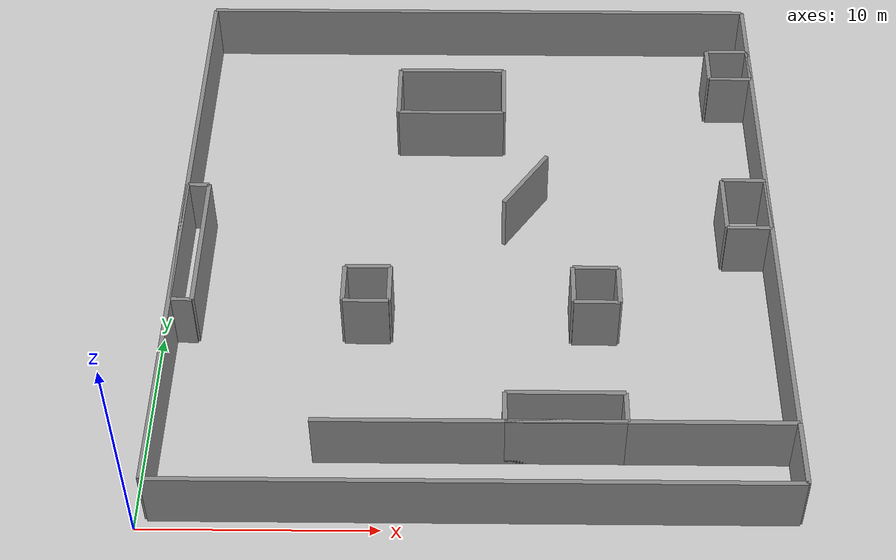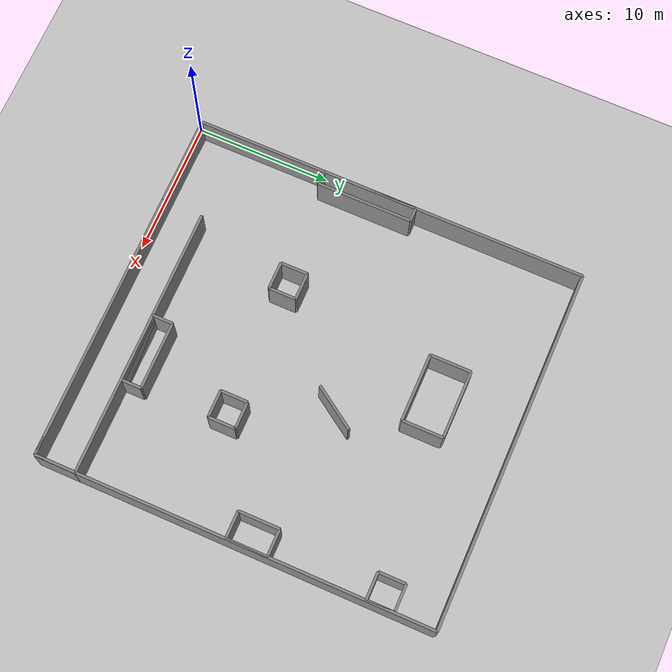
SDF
<?xml version="1.0" ?>

    <!-- this file is auto generated using pedsim_gazebo_plugin pkg -->
    <sdf version="1.5">
      <world name="default">

      <!-- Ground Plane -->

      <model name="ground_plane">
        <static>true</static>
        <link name="link">
          <collision name="collision">
            <geometry>
              <plane>
                <normal>0 0 1</normal>
                <size>100 100</size>
              </plane>
            </geometry>
          </collision>
          <visual name="visual">
            <geometry>
              <plane>
                <normal>0 0 1</normal>
                <size>100 100</size>
              </plane>
            </geometry>
            <material>
              <ambient>0.8 0.8 0.8 1</ambient>
              <diffuse>0.8 0.8 0.8 1</diffuse>
            </material>
          </visual>
        </link>
      </model>

      <light name="sun" type="directional">
        <cast_shadows>true</cast_shadows>
        <pose>0 0 10 0 0 0</pose>
        <diffuse>0.8 0.8 0.8 1</diffuse>
        <specular>0.2 0.2 0.2 1</specular>
        <attenuation>
          <range>1000</range>
          <constant>0.9</constant>
          <linear>0.01</linear>
          <quadratic>0.001</quadratic>
        </attenuation>
        <direction>-0.5 0.1 -0.9</direction>
      </light>

     <model name='grey_wall_1'>
      <static>1</static>
      <link name='link'>

	  <pose frame=''>13.75 0.5  1.4 0 0 0.0</pose>

        <collision name='collision'>
          <geometry>
            <box>

	     <size> 26.5 .2  2.8 </size>

      	   </box>
          </geometry>
          <max_contacts>10</max_contacts>
          <surface>
            <contact>
              <ode/>
            </contact>
            <bounce/>
            <friction>
              <torsional>
                <ode/>
              </torsional>
              <ode/>
            </friction>
          </surface>
        </collision>
        <visual name='visual'>
          <cast_shadows>0</cast_shadows>
          <geometry>
            <box>

	     <size> 26.5 .2  2.8 </size>

      	   </box>
       </geometry>
          <material>
            <ambient>0.55 0.55 0.55 1</ambient>
            <diffuse>0.55 0.55 0.55 1</diffuse>
          </material>
        </visual>
        <self_collide>0</self_collide>
        <enable_wind>0</enable_wind>
        <kinematic>0</kinematic>
      </link>
    </model>

     <model name='grey_wall_2'>
      <static>1</static>
      <link name='link'>

	  <pose frame=''>0.5 15.0  1.4 0 0 1.57</pose>

        <collision name='collision'>
          <geometry>
            <box>

	     <size> 29.0 .2  2.8 </size>

      	   </box>
          </geometry>
          <max_contacts>10</max_contacts>
          <surface>
            <contact>
              <ode/>
            </contact>
            <bounce/>
            <friction>
              <torsional>
                <ode/>
              </torsional>
              <ode/>
            </friction>
          </surface>
        </collision>
        <visual name='visual'>
          <cast_shadows>0</cast_shadows>
          <geometry>
            <box>

	     <size> 29.0 .2  2.8 </size>

      	   </box>
       </geometry>
          <material>
            <ambient>0.55 0.55 0.55 1</ambient>
            <diffuse>0.55 0.55 0.55 1</diffuse>
          </material>
        </visual>
        <self_collide>0</self_collide>
        <enable_wind>0</enable_wind>
        <kinematic>0</kinematic>
      </link>
    </model>

     <model name='grey_wall_3'>
      <static>1</static>
      <link name='link'>

	  <pose frame=''>13.75 29.5  1.4 0 0 0.0</pose>

        <collision name='collision'>
          <geometry>
            <box>

	     <size> 26.5 .2  2.8 </size>

      	   </box>
          </geometry>
          <max_contacts>10</max_contacts>
          <surface>
            <contact>
              <ode/>
            </contact>
            <bounce/>
            <friction>
              <torsional>
                <ode/>
              </torsional>
              <ode/>
            </friction>
          </surface>
        </collision>
        <visual name='visual'>
          <cast_shadows>0</cast_shadows>
          <geometry>
            <box>

	     <size> 26.5 .2  2.8 </size>

      	   </box>
       </geometry>
          <material>
            <ambient>0.55 0.55 0.55 1</ambient>
            <diffuse>0.55 0.55 0.55 1</diffuse>
          </material>
        </visual>
        <self_collide>0</self_collide>
        <enable_wind>0</enable_wind>
        <kinematic>0</kinematic>
      </link>
    </model>

     <model name='grey_wall_4'>
      <static>1</static>
      <link name='link'>

	  <pose frame=''>27.0 15.0  1.4 0 0 1.57</pose>

        <collision name='collision'>
          <geometry>
            <box>

	     <size> 29.0 .2  2.8 </size>

      	   </box>
          </geometry>
          <max_contacts>10</max_contacts>
          <surface>
            <contact>
              <ode/>
            </contact>
            <bounce/>
            <friction>
              <torsional>
                <ode/>
              </torsional>
              <ode/>
            </friction>
          </surface>
        </collision>
        <visual name='visual'>
          <cast_shadows>0</cast_shadows>
          <geometry>
            <box>

	     <size> 29.0 .2  2.8 </size>

      	   </box>
       </geometry>
          <material>
            <ambient>0.55 0.55 0.55 1</ambient>
            <diffuse>0.55 0.55 0.55 1</diffuse>
          </material>
        </visual>
        <self_collide>0</self_collide>
        <enable_wind>0</enable_wind>
        <kinematic>0</kinematic>
      </link>
    </model>

     <model name='grey_wall_5'>
      <static>1</static>
      <link name='link'>

	  <pose frame=''>12.5 22.0  1.4 0 0 0.0</pose>

        <collision name='collision'>
          <geometry>
            <box>

	     <size> 5.0 .2  2.8 </size>

      	   </box>
          </geometry>
          <max_contacts>10</max_contacts>
          <surface>
            <contact>
              <ode/>
            </contact>
            <bounce/>
            <friction>
              <torsional>
                <ode/>
              </torsional>
              <ode/>
            </friction>
          </surface>
        </collision>
        <visual name='visual'>
          <cast_shadows>0</cast_shadows>
          <geometry>
            <box>

	     <size> 5.0 .2  2.8 </size>

      	   </box>
       </geometry>
          <material>
            <ambient>0.55 0.55 0.55 1</ambient>
            <diffuse>0.55 0.55 0.55 1</diffuse>
          </material>
        </visual>
        <self_collide>0</self_collide>
        <enable_wind>0</enable_wind>
        <kinematic>0</kinematic>
      </link>
    </model>

     <model name='grey_wall_6'>
      <static>1</static>
      <link name='link'>

	  <pose frame=''>10.0 23.5  1.4 0 0 1.57</pose>

        <collision name='collision'>
          <geometry>
            <box>

	     <size> 3.0 .2  2.8 </size>

      	   </box>
          </geometry>
          <max_contacts>10</max_contacts>
          <surface>
            <contact>
              <ode/>
            </contact>
            <bounce/>
            <friction>
              <torsional>
                <ode/>
              </torsional>
              <ode/>
            </friction>
          </surface>
        </collision>
        <visual name='visual'>
          <cast_shadows>0</cast_shadows>
          <geometry>
            <box>

	     <size> 3.0 .2  2.8 </size>

      	   </box>
       </geometry>
          <material>
            <ambient>0.55 0.55 0.55 1</ambient>
            <diffuse>0.55 0.55 0.55 1</diffuse>
          </material>
        </visual>
        <self_collide>0</self_collide>
        <enable_wind>0</enable_wind>
        <kinematic>0</kinematic>
      </link>
    </model>

     <model name='grey_wall_7'>
      <static>1</static>
      <link name='link'>

	  <pose frame=''>12.5 25.0  1.4 0 0 0.0</pose>

        <collision name='collision'>
          <geometry>
            <box>

	     <size> 5.0 .2  2.8 </size>

      	   </box>
          </geometry>
          <max_contacts>10</max_contacts>
          <surface>
            <contact>
              <ode/>
            </contact>
            <bounce/>
            <friction>
              <torsional>
                <ode/>
              </torsional>
              <ode/>
            </friction>
          </surface>
        </collision>
        <visual name='visual'>
          <cast_shadows>0</cast_shadows>
          <geometry>
            <box>

	     <size> 5.0 .2  2.8 </size>

      	   </box>
       </geometry>
          <material>
            <ambient>0.55 0.55 0.55 1</ambient>
            <diffuse>0.55 0.55 0.55 1</diffuse>
          </material>
        </visual>
        <self_collide>0</self_collide>
        <enable_wind>0</enable_wind>
        <kinematic>0</kinematic>
      </link>
    </model>

     <model name='grey_wall_8'>
      <static>1</static>
      <link name='link'>

	  <pose frame=''>15.0 23.5  1.4 0 0 1.57</pose>

        <collision name='collision'>
          <geometry>
            <box>

	     <size> 3.0 .2  2.8 </size>

      	   </box>
          </geometry>
          <max_contacts>10</max_contacts>
          <surface>
            <contact>
              <ode/>
            </contact>
            <bounce/>
            <friction>
              <torsional>
                <ode/>
              </torsional>
              <ode/>
            </friction>
          </surface>
        </collision>
        <visual name='visual'>
          <cast_shadows>0</cast_shadows>
          <geometry>
            <box>

	     <size> 3.0 .2  2.8 </size>

      	   </box>
       </geometry>
          <material>
            <ambient>0.55 0.55 0.55 1</ambient>
            <diffuse>0.55 0.55 0.55 1</diffuse>
          </material>
        </visual>
        <self_collide>0</self_collide>
        <enable_wind>0</enable_wind>
        <kinematic>0</kinematic>
      </link>
    </model>

     <model name='grey_wall_9'>
      <static>1</static>
      <link name='link'>

	  <pose frame=''>19.0 10.0  1.4 0 0 0.0</pose>

        <collision name='collision'>
          <geometry>
            <box>

	     <size> 2.0 .2  2.8 </size>

      	   </box>
          </geometry>
          <max_contacts>10</max_contacts>
          <surface>
            <contact>
              <ode/>
            </contact>
            <bounce/>
            <friction>
              <torsional>
                <ode/>
              </torsional>
              <ode/>
            </friction>
          </surface>
        </collision>
        <visual name='visual'>
          <cast_shadows>0</cast_shadows>
          <geometry>
            <box>

	     <size> 2.0 .2  2.8 </size>

      	   </box>
       </geometry>
          <material>
            <ambient>0.55 0.55 0.55 1</ambient>
            <diffuse>0.55 0.55 0.55 1</diffuse>
          </material>
        </visual>
        <self_collide>0</self_collide>
        <enable_wind>0</enable_wind>
        <kinematic>0</kinematic>
      </link>
    </model>

     <model name='grey_wall_10'>
      <static>1</static>
      <link name='link'>

	  <pose frame=''>18.0 11.0  1.4 0 0 1.57</pose>

        <collision name='collision'>
          <geometry>
            <box>

	     <size> 2.0 .2  2.8 </size>

      	   </box>
          </geometry>
          <max_contacts>10</max_contacts>
          <surface>
            <contact>
              <ode/>
            </contact>
            <bounce/>
            <friction>
              <torsional>
                <ode/>
              </torsional>
              <ode/>
            </friction>
          </surface>
        </collision>
        <visual name='visual'>
          <cast_shadows>0</cast_shadows>
          <geometry>
            <box>

	     <size> 2.0 .2  2.8 </size>

      	   </box>
       </geometry>
          <material>
            <ambient>0.55 0.55 0.55 1</ambient>
            <diffuse>0.55 0.55 0.55 1</diffuse>
          </material>
        </visual>
        <self_collide>0</self_collide>
        <enable_wind>0</enable_wind>
        <kinematic>0</kinematic>
      </link>
    </model>

     <model name='grey_wall_11'>
      <static>1</static>
      <link name='link'>

	  <pose frame=''>19.0 12.0  1.4 0 0 0.0</pose>

        <collision name='collision'>
          <geometry>
            <box>

	     <size> 2.0 .2  2.8 </size>

      	   </box>
          </geometry>
          <max_contacts>10</max_contacts>
          <surface>
            <contact>
              <ode/>
            </contact>
            <bounce/>
            <friction>
              <torsional>
                <ode/>
              </torsional>
              <ode/>
            </friction>
          </surface>
        </collision>
        <visual name='visual'>
          <cast_shadows>0</cast_shadows>
          <geometry>
            <box>

	     <size> 2.0 .2  2.8 </size>

      	   </box>
       </geometry>
          <material>
            <ambient>0.55 0.55 0.55 1</ambient>
            <diffuse>0.55 0.55 0.55 1</diffuse>
          </material>
        </visual>
        <self_collide>0</self_collide>
        <enable_wind>0</enable_wind>
        <kinematic>0</kinematic>
      </link>
    </model>

     <model name='grey_wall_12'>
      <static>1</static>
      <link name='link'>

	  <pose frame=''>20.0 11.0  1.4 0 0 1.57</pose>

        <collision name='collision'>
          <geometry>
            <box>

	     <size> 2.0 .2  2.8 </size>

      	   </box>
          </geometry>
          <max_contacts>10</max_contacts>
          <surface>
            <contact>
              <ode/>
            </contact>
            <bounce/>
            <friction>
              <torsional>
                <ode/>
              </torsional>
              <ode/>
            </friction>
          </surface>
        </collision>
        <visual name='visual'>
          <cast_shadows>0</cast_shadows>
          <geometry>
            <box>

	     <size> 2.0 .2  2.8 </size>

      	   </box>
       </geometry>
          <material>
            <ambient>0.55 0.55 0.55 1</ambient>
            <diffuse>0.55 0.55 0.55 1</diffuse>
          </material>
        </visual>
        <self_collide>0</self_collide>
        <enable_wind>0</enable_wind>
        <kinematic>0</kinematic>
      </link>
    </model>

     <model name='grey_wall_13'>
      <static>1</static>
      <link name='link'>

	  <pose frame=''>9.0 10.0  1.4 0 0 0.0</pose>

        <collision name='collision'>
          <geometry>
            <box>

	     <size> 2.0 .2  2.8 </size>

      	   </box>
          </geometry>
          <max_contacts>10</max_contacts>
          <surface>
            <contact>
              <ode/>
            </contact>
            <bounce/>
            <friction>
              <torsional>
                <ode/>
              </torsional>
              <ode/>
            </friction>
          </surface>
        </collision>
        <visual name='visual'>
          <cast_shadows>0</cast_shadows>
          <geometry>
            <box>

	     <size> 2.0 .2  2.8 </size>

      	   </box>
       </geometry>
          <material>
            <ambient>0.55 0.55 0.55 1</ambient>
            <diffuse>0.55 0.55 0.55 1</diffuse>
          </material>
        </visual>
        <self_collide>0</self_collide>
        <enable_wind>0</enable_wind>
        <kinematic>0</kinematic>
      </link>
    </model>

     <model name='grey_wall_14'>
      <static>1</static>
      <link name='link'>

	  <pose frame=''>8.0 11.0  1.4 0 0 1.57</pose>

        <collision name='collision'>
          <geometry>
            <box>

	     <size> 2.0 .2  2.8 </size>

      	   </box>
          </geometry>
          <max_contacts>10</max_contacts>
          <surface>
            <contact>
              <ode/>
            </contact>
            <bounce/>
            <friction>
              <torsional>
                <ode/>
              </torsional>
              <ode/>
            </friction>
          </surface>
        </collision>
        <visual name='visual'>
          <cast_shadows>0</cast_shadows>
          <geometry>
            <box>

	     <size> 2.0 .2  2.8 </size>

      	   </box>
       </geometry>
          <material>
            <ambient>0.55 0.55 0.55 1</ambient>
            <diffuse>0.55 0.55 0.55 1</diffuse>
          </material>
        </visual>
        <self_collide>0</self_collide>
        <enable_wind>0</enable_wind>
        <kinematic>0</kinematic>
      </link>
    </model>

     <model name='grey_wall_15'>
      <static>1</static>
      <link name='link'>

	  <pose frame=''>9.0 12.0  1.4 0 0 0.0</pose>

        <collision name='collision'>
          <geometry>
            <box>

	     <size> 2.0 .2  2.8 </size>

      	   </box>
          </geometry>
          <max_contacts>10</max_contacts>
          <surface>
            <contact>
              <ode/>
            </contact>
            <bounce/>
            <friction>
              <torsional>
                <ode/>
              </torsional>
              <ode/>
            </friction>
          </surface>
        </collision>
        <visual name='visual'>
          <cast_shadows>0</cast_shadows>
          <geometry>
            <box>

	     <size> 2.0 .2  2.8 </size>

      	   </box>
       </geometry>
          <material>
            <ambient>0.55 0.55 0.55 1</ambient>
            <diffuse>0.55 0.55 0.55 1</diffuse>
          </material>
        </visual>
        <self_collide>0</self_collide>
        <enable_wind>0</enable_wind>
        <kinematic>0</kinematic>
      </link>
    </model>

     <model name='grey_wall_16'>
      <static>1</static>
      <link name='link'>

	  <pose frame=''>10.0 11.0  1.4 0 0 1.57</pose>

        <collision name='collision'>
          <geometry>
            <box>

	     <size> 2.0 .2  2.8 </size>

      	   </box>
          </geometry>
          <max_contacts>10</max_contacts>
          <surface>
            <contact>
              <ode/>
            </contact>
            <bounce/>
            <friction>
              <torsional>
                <ode/>
              </torsional>
              <ode/>
            </friction>
          </surface>
        </collision>
        <visual name='visual'>
          <cast_shadows>0</cast_shadows>
          <geometry>
            <box>

	     <size> 2.0 .2  2.8 </size>

      	   </box>
       </geometry>
          <material>
            <ambient>0.55 0.55 0.55 1</ambient>
            <diffuse>0.55 0.55 0.55 1</diffuse>
          </material>
        </visual>
        <self_collide>0</self_collide>
        <enable_wind>0</enable_wind>
        <kinematic>0</kinematic>
      </link>
    </model>

     <model name='grey_wall_17'>
      <static>1</static>
      <link name='link'>

	  <pose frame=''>16.0 17.5  1.4 0 0 0.982793723247</pose>

        <collision name='collision'>
          <geometry>
            <box>

	     <size> 3.60555127546 .2  2.8 </size>

      	   </box>
          </geometry>
          <max_contacts>10</max_contacts>
          <surface>
            <contact>
              <ode/>
            </contact>
            <bounce/>
            <friction>
              <torsional>
                <ode/>
              </torsional>
              <ode/>
            </friction>
          </surface>
        </collision>
        <visual name='visual'>
          <cast_shadows>0</cast_shadows>
          <geometry>
            <box>

	     <size> 3.60555127546 .2  2.8 </size>

      	   </box>
       </geometry>
          <material>
            <ambient>0.55 0.55 0.55 1</ambient>
            <diffuse>0.55 0.55 0.55 1</diffuse>
          </material>
        </visual>
        <self_collide>0</self_collide>
        <enable_wind>0</enable_wind>
        <kinematic>0</kinematic>
      </link>
    </model>

     <model name='grey_wall_18'>
      <static>1</static>
      <link name='link'>

	  <pose frame=''>17.5 3.5  1.4 0 0 0.0</pose>

        <collision name='collision'>
          <geometry>
            <box>

	     <size> 5.0 .2  2.8 </size>

      	   </box>
          </geometry>
          <max_contacts>10</max_contacts>
          <surface>
            <contact>
              <ode/>
            </contact>
            <bounce/>
            <friction>
              <torsional>
                <ode/>
              </torsional>
              <ode/>
            </friction>
          </surface>
        </collision>
        <visual name='visual'>
          <cast_shadows>0</cast_shadows>
          <geometry>
            <box>

	     <size> 5.0 .2  2.8 </size>

      	   </box>
       </geometry>
          <material>
            <ambient>0.55 0.55 0.55 1</ambient>
            <diffuse>0.55 0.55 0.55 1</diffuse>
          </material>
        </visual>
        <self_collide>0</self_collide>
        <enable_wind>0</enable_wind>
        <kinematic>0</kinematic>
      </link>
    </model>

     <model name='grey_wall_19'>
      <static>1</static>
      <link name='link'>

	  <pose frame=''>15.0 4.25  1.4 0 0 1.57</pose>

        <collision name='collision'>
          <geometry>
            <box>

	     <size> 1.5 .2  2.8 </size>

      	   </box>
          </geometry>
          <max_contacts>10</max_contacts>
          <surface>
            <contact>
              <ode/>
            </contact>
            <bounce/>
            <friction>
              <torsional>
                <ode/>
              </torsional>
              <ode/>
            </friction>
          </surface>
        </collision>
        <visual name='visual'>
          <cast_shadows>0</cast_shadows>
          <geometry>
            <box>

	     <size> 1.5 .2  2.8 </size>

      	   </box>
       </geometry>
          <material>
            <ambient>0.55 0.55 0.55 1</ambient>
            <diffuse>0.55 0.55 0.55 1</diffuse>
          </material>
        </visual>
        <self_collide>0</self_collide>
        <enable_wind>0</enable_wind>
        <kinematic>0</kinematic>
      </link>
    </model>

     <model name='grey_wall_20'>
      <static>1</static>
      <link name='link'>

	  <pose frame=''>17.5 5.0  1.4 0 0 0.0</pose>

        <collision name='collision'>
          <geometry>
            <box>

	     <size> 5.0 .2  2.8 </size>

      	   </box>
          </geometry>
          <max_contacts>10</max_contacts>
          <surface>
            <contact>
              <ode/>
            </contact>
            <bounce/>
            <friction>
              <torsional>
                <ode/>
              </torsional>
              <ode/>
            </friction>
          </surface>
        </collision>
        <visual name='visual'>
          <cast_shadows>0</cast_shadows>
          <geometry>
            <box>

	     <size> 5.0 .2  2.8 </size>

      	   </box>
       </geometry>
          <material>
            <ambient>0.55 0.55 0.55 1</ambient>
            <diffuse>0.55 0.55 0.55 1</diffuse>
          </material>
        </visual>
        <self_collide>0</self_collide>
        <enable_wind>0</enable_wind>
        <kinematic>0</kinematic>
      </link>
    </model>

     <model name='grey_wall_21'>
      <static>1</static>
      <link name='link'>

	  <pose frame=''>20.0 4.25  1.4 0 0 1.57</pose>

        <collision name='collision'>
          <geometry>
            <box>

	     <size> 1.5 .2  2.8 </size>

      	   </box>
          </geometry>
          <max_contacts>10</max_contacts>
          <surface>
            <contact>
              <ode/>
            </contact>
            <bounce/>
            <friction>
              <torsional>
                <ode/>
              </torsional>
              <ode/>
            </friction>
          </surface>
        </collision>
        <visual name='visual'>
          <cast_shadows>0</cast_shadows>
          <geometry>
            <box>

	     <size> 1.5 .2  2.8 </size>

      	   </box>
       </geometry>
          <material>
            <ambient>0.55 0.55 0.55 1</ambient>
            <diffuse>0.55 0.55 0.55 1</diffuse>
          </material>
        </visual>
        <self_collide>0</self_collide>
        <enable_wind>0</enable_wind>
        <kinematic>0</kinematic>
      </link>
    </model>

     <model name='grey_wall_22'>
      <static>1</static>
      <link name='link'>

	  <pose frame=''>26.0 24.5  1.4 0 0 0.0</pose>

        <collision name='collision'>
          <geometry>
            <box>

	     <size> 2.0 .2  2.8 </size>

      	   </box>
          </geometry>
          <max_contacts>10</max_contacts>
          <surface>
            <contact>
              <ode/>
            </contact>
            <bounce/>
            <friction>
              <torsional>
                <ode/>
              </torsional>
              <ode/>
            </friction>
          </surface>
        </collision>
        <visual name='visual'>
          <cast_shadows>0</cast_shadows>
          <geometry>
            <box>

	     <size> 2.0 .2  2.8 </size>

      	   </box>
       </geometry>
          <material>
            <ambient>0.55 0.55 0.55 1</ambient>
            <diffuse>0.55 0.55 0.55 1</diffuse>
          </material>
        </visual>
        <self_collide>0</self_collide>
        <enable_wind>0</enable_wind>
        <kinematic>0</kinematic>
      </link>
    </model>

     <model name='grey_wall_23'>
      <static>1</static>
      <link name='link'>

	  <pose frame=''>25.0 25.5  1.4 0 0 1.57</pose>

        <collision name='collision'>
          <geometry>
            <box>

	     <size> 2.0 .2  2.8 </size>

      	   </box>
          </geometry>
          <max_contacts>10</max_contacts>
          <surface>
            <contact>
              <ode/>
            </contact>
            <bounce/>
            <friction>
              <torsional>
                <ode/>
              </torsional>
              <ode/>
            </friction>
          </surface>
        </collision>
        <visual name='visual'>
          <cast_shadows>0</cast_shadows>
          <geometry>
            <box>

	     <size> 2.0 .2  2.8 </size>

      	   </box>
       </geometry>
          <material>
            <ambient>0.55 0.55 0.55 1</ambient>
            <diffuse>0.55 0.55 0.55 1</diffuse>
          </material>
        </visual>
        <self_collide>0</self_collide>
        <enable_wind>0</enable_wind>
        <kinematic>0</kinematic>
      </link>
    </model>

     <model name='grey_wall_24'>
      <static>1</static>
      <link name='link'>

	  <pose frame=''>26.0 26.5  1.4 0 0 0.0</pose>

        <collision name='collision'>
          <geometry>
            <box>

	     <size> 2.0 .2  2.8 </size>

      	   </box>
          </geometry>
          <max_contacts>10</max_contacts>
          <surface>
            <contact>
              <ode/>
            </contact>
            <bounce/>
            <friction>
              <torsional>
                <ode/>
              </torsional>
              <ode/>
            </friction>
          </surface>
        </collision>
        <visual name='visual'>
          <cast_shadows>0</cast_shadows>
          <geometry>
            <box>

	     <size> 2.0 .2  2.8 </size>

      	   </box>
       </geometry>
          <material>
            <ambient>0.55 0.55 0.55 1</ambient>
            <diffuse>0.55 0.55 0.55 1</diffuse>
          </material>
        </visual>
        <self_collide>0</self_collide>
        <enable_wind>0</enable_wind>
        <kinematic>0</kinematic>
      </link>
    </model>

     <model name='grey_wall_25'>
      <static>1</static>
      <link name='link'>

	  <pose frame=''>27.0 25.5  1.4 0 0 1.57</pose>

        <collision name='collision'>
          <geometry>
            <box>

	     <size> 2.0 .2  2.8 </size>

      	   </box>
          </geometry>
          <max_contacts>10</max_contacts>
          <surface>
            <contact>
              <ode/>
            </contact>
            <bounce/>
            <friction>
              <torsional>
                <ode/>
              </torsional>
              <ode/>
            </friction>
          </surface>
        </collision>
        <visual name='visual'>
          <cast_shadows>0</cast_shadows>
          <geometry>
            <box>

	     <size> 2.0 .2  2.8 </size>

      	   </box>
       </geometry>
          <material>
            <ambient>0.55 0.55 0.55 1</ambient>
            <diffuse>0.55 0.55 0.55 1</diffuse>
          </material>
        </visual>
        <self_collide>0</self_collide>
        <enable_wind>0</enable_wind>
        <kinematic>0</kinematic>
      </link>
    </model>

     <model name='grey_wall_26'>
      <static>1</static>
      <link name='link'>

	  <pose frame=''>26.0 14.5  1.4 0 0 0.0</pose>

        <collision name='collision'>
          <geometry>
            <box>

	     <size> 2.0 .2  2.8 </size>

      	   </box>
          </geometry>
          <max_contacts>10</max_contacts>
          <surface>
            <contact>
              <ode/>
            </contact>
            <bounce/>
            <friction>
              <torsional>
                <ode/>
              </torsional>
              <ode/>
            </friction>
          </surface>
        </collision>
        <visual name='visual'>
          <cast_shadows>0</cast_shadows>
          <geometry>
            <box>

	     <size> 2.0 .2  2.8 </size>

      	   </box>
       </geometry>
          <material>
            <ambient>0.55 0.55 0.55 1</ambient>
            <diffuse>0.55 0.55 0.55 1</diffuse>
          </material>
        </visual>
        <self_collide>0</self_collide>
        <enable_wind>0</enable_wind>
        <kinematic>0</kinematic>
      </link>
    </model>

     <model name='grey_wall_27'>
      <static>1</static>
      <link name='link'>

	  <pose frame=''>25.0 16.0  1.4 0 0 1.57</pose>

        <collision name='collision'>
          <geometry>
            <box>

	     <size> 3.0 .2  2.8 </size>

      	   </box>
          </geometry>
          <max_contacts>10</max_contacts>
          <surface>
            <contact>
              <ode/>
            </contact>
            <bounce/>
            <friction>
              <torsional>
                <ode/>
              </torsional>
              <ode/>
            </friction>
          </surface>
        </collision>
        <visual name='visual'>
          <cast_shadows>0</cast_shadows>
          <geometry>
            <box>

	     <size> 3.0 .2  2.8 </size>

      	   </box>
       </geometry>
          <material>
            <ambient>0.55 0.55 0.55 1</ambient>
            <diffuse>0.55 0.55 0.55 1</diffuse>
          </material>
        </visual>
        <self_collide>0</self_collide>
        <enable_wind>0</enable_wind>
        <kinematic>0</kinematic>
      </link>
    </model>

     <model name='grey_wall_28'>
      <static>1</static>
      <link name='link'>

	  <pose frame=''>26.0 17.5  1.4 0 0 0.0</pose>

        <collision name='collision'>
          <geometry>
            <box>

	     <size> 2.0 .2  2.8 </size>

      	   </box>
          </geometry>
          <max_contacts>10</max_contacts>
          <surface>
            <contact>
              <ode/>
            </contact>
            <bounce/>
            <friction>
              <torsional>
                <ode/>
              </torsional>
              <ode/>
            </friction>
          </surface>
        </collision>
        <visual name='visual'>
          <cast_shadows>0</cast_shadows>
          <geometry>
            <box>

	     <size> 2.0 .2  2.8 </size>

      	   </box>
       </geometry>
          <material>
            <ambient>0.55 0.55 0.55 1</ambient>
            <diffuse>0.55 0.55 0.55 1</diffuse>
          </material>
        </visual>
        <self_collide>0</self_collide>
        <enable_wind>0</enable_wind>
        <kinematic>0</kinematic>
      </link>
    </model>

     <model name='grey_wall_29'>
      <static>1</static>
      <link name='link'>

	  <pose frame=''>27.0 16.0  1.4 0 0 1.57</pose>

        <collision name='collision'>
          <geometry>
            <box>

	     <size> 3.0 .2  2.8 </size>

      	   </box>
          </geometry>
          <max_contacts>10</max_contacts>
          <surface>
            <contact>
              <ode/>
            </contact>
            <bounce/>
            <friction>
              <torsional>
                <ode/>
              </torsional>
              <ode/>
            </friction>
          </surface>
        </collision>
        <visual name='visual'>
          <cast_shadows>0</cast_shadows>
          <geometry>
            <box>

	     <size> 3.0 .2  2.8 </size>

      	   </box>
       </geometry>
          <material>
            <ambient>0.55 0.55 0.55 1</ambient>
            <diffuse>0.55 0.55 0.55 1</diffuse>
          </material>
        </visual>
        <self_collide>0</self_collide>
        <enable_wind>0</enable_wind>
        <kinematic>0</kinematic>
      </link>
    </model>

     <model name='grey_wall_30'>
      <static>1</static>
      <link name='link'>

	  <pose frame=''>1.0 10.0  1.4 0 0 0.0</pose>

        <collision name='collision'>
          <geometry>
            <box>

	     <size> 1.0 .2  2.8 </size>

      	   </box>
          </geometry>
          <max_contacts>10</max_contacts>
          <surface>
            <contact>
              <ode/>
            </contact>
            <bounce/>
            <friction>
              <torsional>
                <ode/>
              </torsional>
              <ode/>
            </friction>
          </surface>
        </collision>
        <visual name='visual'>
          <cast_shadows>0</cast_shadows>
          <geometry>
            <box>

	     <size> 1.0 .2  2.8 </size>

      	   </box>
       </geometry>
          <material>
            <ambient>0.55 0.55 0.55 1</ambient>
            <diffuse>0.55 0.55 0.55 1</diffuse>
          </material>
        </visual>
        <self_collide>0</self_collide>
        <enable_wind>0</enable_wind>
        <kinematic>0</kinematic>
      </link>
    </model>

     <model name='grey_wall_31'>
      <static>1</static>
      <link name='link'>

	  <pose frame=''>0.5 13.5  1.4 0 0 1.57</pose>

        <collision name='collision'>
          <geometry>
            <box>

	     <size> 7.0 .2  2.8 </size>

      	   </box>
          </geometry>
          <max_contacts>10</max_contacts>
          <surface>
            <contact>
              <ode/>
            </contact>
            <bounce/>
            <friction>
              <torsional>
                <ode/>
              </torsional>
              <ode/>
            </friction>
          </surface>
        </collision>
        <visual name='visual'>
          <cast_shadows>0</cast_shadows>
          <geometry>
            <box>

	     <size> 7.0 .2  2.8 </size>

      	   </box>
       </geometry>
          <material>
            <ambient>0.55 0.55 0.55 1</ambient>
            <diffuse>0.55 0.55 0.55 1</diffuse>
          </material>
        </visual>
        <self_collide>0</self_collide>
        <enable_wind>0</enable_wind>
        <kinematic>0</kinematic>
      </link>
    </model>

     <model name='grey_wall_32'>
      <static>1</static>
      <link name='link'>

	  <pose frame=''>1.0 17.0  1.4 0 0 0.0</pose>

        <collision name='collision'>
          <geometry>
            <box>

	     <size> 1.0 .2  2.8 </size>

      	   </box>
          </geometry>
          <max_contacts>10</max_contacts>
          <surface>
            <contact>
              <ode/>
            </contact>
            <bounce/>
            <friction>
              <torsional>
                <ode/>
              </torsional>
              <ode/>
            </friction>
          </surface>
        </collision>
        <visual name='visual'>
          <cast_shadows>0</cast_shadows>
          <geometry>
            <box>

	     <size> 1.0 .2  2.8 </size>

      	   </box>
       </geometry>
          <material>
            <ambient>0.55 0.55 0.55 1</ambient>
            <diffuse>0.55 0.55 0.55 1</diffuse>
          </material>
        </visual>
        <self_collide>0</self_collide>
        <enable_wind>0</enable_wind>
        <kinematic>0</kinematic>
      </link>
    </model>

     <model name='grey_wall_33'>
      <static>1</static>
      <link name='link'>

	  <pose frame=''>1.5 13.5  1.4 0 0 1.57</pose>

        <collision name='collision'>
          <geometry>
            <box>

	     <size> 7.0 .2  2.8 </size>

      	   </box>
          </geometry>
          <max_contacts>10</max_contacts>
          <surface>
            <contact>
              <ode/>
            </contact>
            <bounce/>
            <friction>
              <torsional>
                <ode/>
              </torsional>
              <ode/>
            </friction>
          </surface>
        </collision>
        <visual name='visual'>
          <cast_shadows>0</cast_shadows>
          <geometry>
            <box>

	     <size> 7.0 .2  2.8 </size>

      	   </box>
       </geometry>
          <material>
            <ambient>0.55 0.55 0.55 1</ambient>
            <diffuse>0.55 0.55 0.55 1</diffuse>
          </material>
        </visual>
        <self_collide>0</self_collide>
        <enable_wind>0</enable_wind>
        <kinematic>0</kinematic>
      </link>
    </model>

     <model name='grey_wall_34'>
      <static>1</static>
      <link name='link'>

	  <pose frame=''>17.0 0.5  1.4 0 0 0.0</pose>

        <collision name='collision'>
          <geometry>
            <box>

	     <size> 20.0 .2  2.8 </size>

      	   </box>
          </geometry>
          <max_contacts>10</max_contacts>
          <surface>
            <contact>
              <ode/>
            </contact>
            <bounce/>
            <friction>
              <torsional>
                <ode/>
              </torsional>
              <ode/>
            </friction>
          </surface>
        </collision>
        <visual name='visual'>
          <cast_shadows>0</cast_shadows>
          <geometry>
            <box>

	     <size> 20.0 .2  2.8 </size>

      	   </box>
       </geometry>
          <material>
            <ambient>0.55 0.55 0.55 1</ambient>
            <diffuse>0.55 0.55 0.55 1</diffuse>
          </material>
        </visual>
        <self_collide>0</self_collide>
        <enable_wind>0</enable_wind>
        <kinematic>0</kinematic>
      </link>
    </model>

     <model name='grey_wall_35'>
      <static>1</static>
      <link name='link'>

	  <pose frame=''>17.0 3.5  1.4 0 0 0.0</pose>

        <collision name='collision'>
          <geometry>
            <box>

	     <size> 20.0 .2  2.8 </size>

      	   </box>
          </geometry>
          <max_contacts>10</max_contacts>
          <surface>
            <contact>
              <ode/>
            </contact>
            <bounce/>
            <friction>
              <torsional>
                <ode/>
              </torsional>
              <ode/>
            </friction>
          </surface>
        </collision>
        <visual name='visual'>
          <cast_shadows>0</cast_shadows>
          <geometry>
            <box>

	     <size> 20.0 .2  2.8 </size>

      	   </box>
       </geometry>
          <material>
            <ambient>0.55 0.55 0.55 1</ambient>
            <diffuse>0.55 0.55 0.55 1</diffuse>
          </material>
        </visual>
        <self_collide>0</self_collide>
        <enable_wind>0</enable_wind>
        <kinematic>0</kinematic>
      </link>
    </model>

     <model name='grey_wall_36'>
      <static>1</static>
      <link name='link'>

	  <pose frame=''>27.0 2.0  1.4 0 0 1.57</pose>

        <collision name='collision'>
          <geometry>
            <box>

	     <size> 3.0 .2  2.8 </size>

      	   </box>
          </geometry>
          <max_contacts>10</max_contacts>
          <surface>
            <contact>
              <ode/>
            </contact>
            <bounce/>
            <friction>
              <torsional>
                <ode/>
              </torsional>
              <ode/>
            </friction>
          </surface>
        </collision>
        <visual name='visual'>
          <cast_shadows>0</cast_shadows>
          <geometry>
            <box>

	     <size> 3.0 .2  2.8 </size>

      	   </box>
       </geometry>
          <material>
            <ambient>0.55 0.55 0.55 1</ambient>
            <diffuse>0.55 0.55 0.55 1</diffuse>
          </material>
        </visual>
        <self_collide>0</self_collide>
        <enable_wind>0</enable_wind>
        <kinematic>0</kinematic>
      </link>
    </model>

      </world>
    </sdf>
